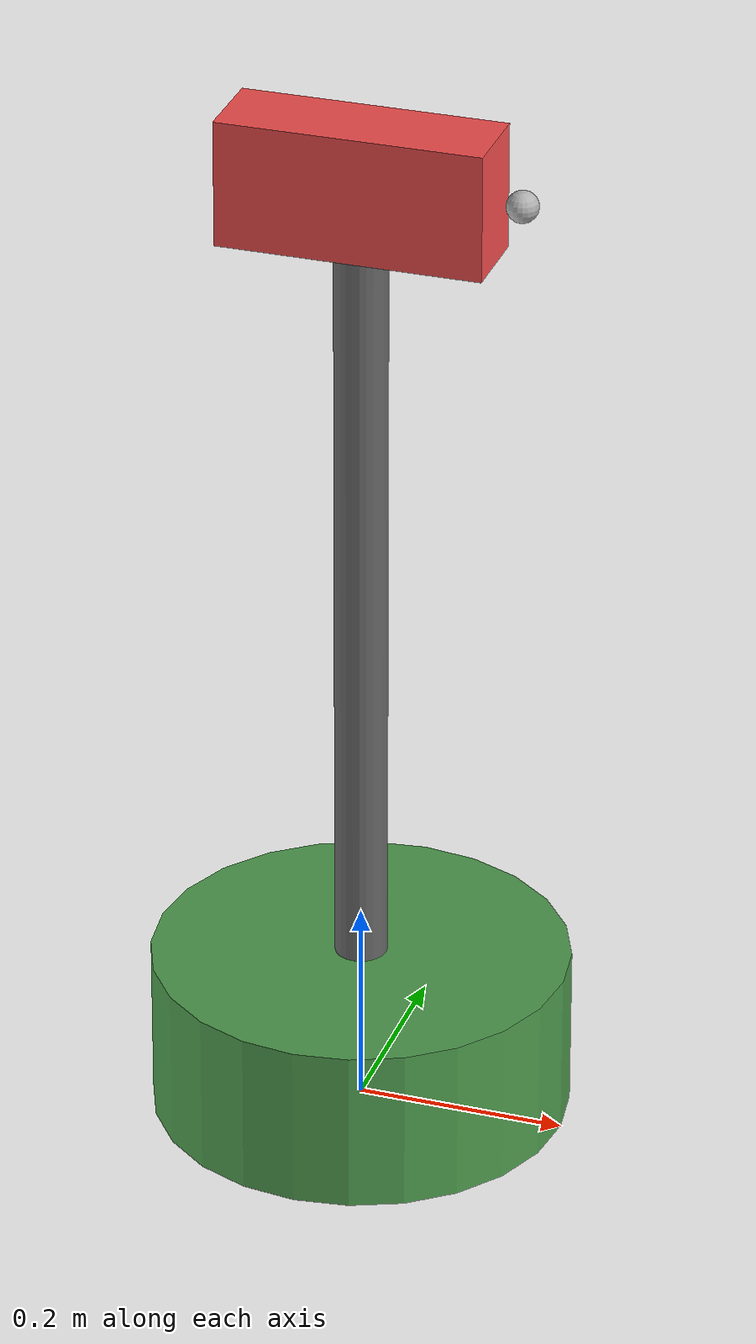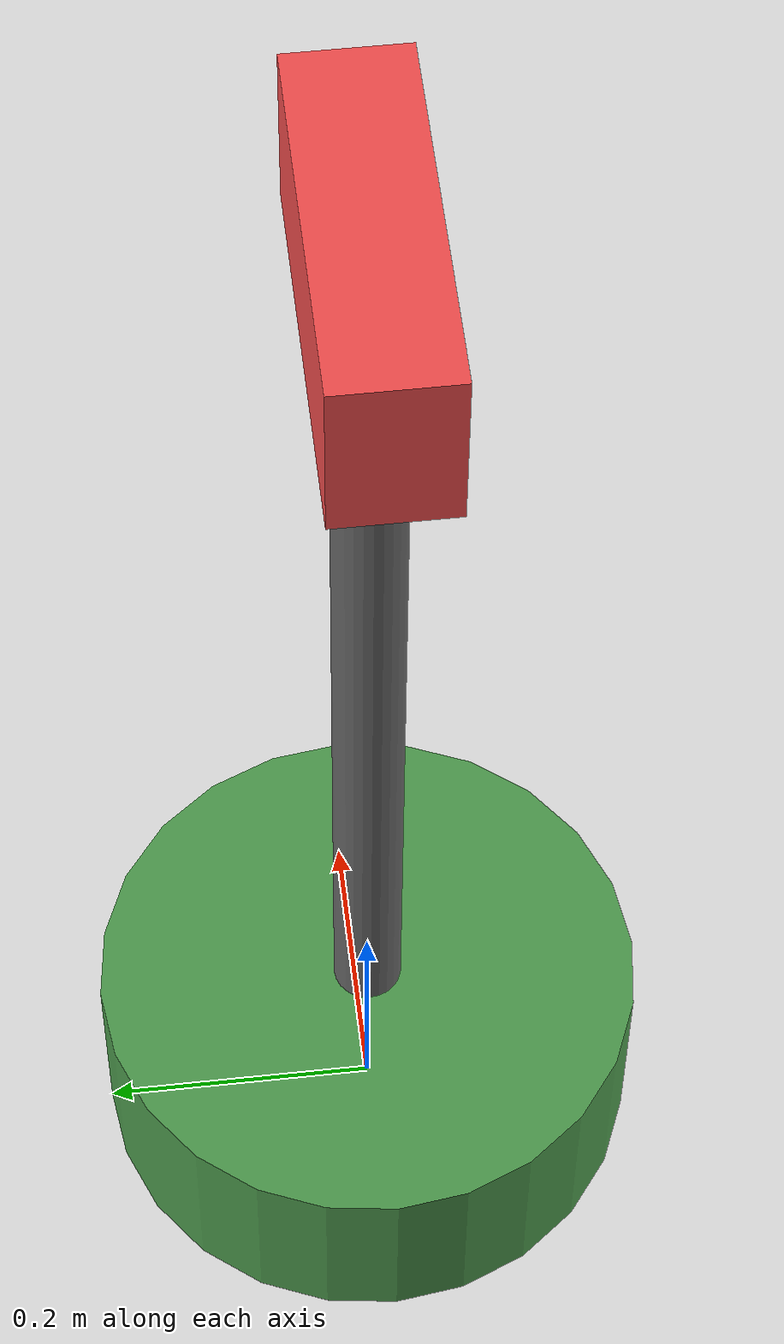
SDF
<?xml version="1.0"?>
<sdf version="1.7">
  <model name="bird_motion_sprinkler">
    <!-- Motion sensor base platform that detects bird presence. -->
    <link name="sensor_base">
      <pose>0 0 0.08 0 0 0</pose>
      <inertial>
        <mass>6.5</mass>
        <inertia>
          <ixx>0.15</ixx>
          <iyy>0.15</iyy>
          <izz>0.10</izz>
          <ixy>0.0</ixy>
          <ixz>0.0</ixz>
          <iyz>0.0</iyz>
        </inertia>
      </inertial>

      <collision name="base_collision">
        <geometry>
          <cylinder>
            <radius>0.20</radius>
            <length>0.16</length>
          </cylinder>
        </geometry>
      </collision>

      <visual name="base_visual">
        <geometry>
          <cylinder>
            <radius>0.20</radius>
            <length>0.16</length>
          </cylinder>
        </geometry>
        <material>
          <ambient>0.2 0.5 0.2 1.0</ambient>
          <diffuse>0.3 0.6 0.3 1.0</diffuse>
          <specular>0.1 0.1 0.1 1.0</specular>
        </material>
      </visual>
    </link>

    <!-- Fixed vertical support stem extending from the sensor base. -->
    <link name="support_stem">
      <pose>0 0 0.50 0 0 0</pose>
      <inertial>
        <mass>2.0</mass>
        <inertia>
          <ixx>0.015</ixx>
          <iyy>0.015</iyy>
          <izz>0.005</izz>
          <ixy>0.0</ixy>
          <ixz>0.0</ixz>
          <iyz>0.0</iyz>
        </inertia>
      </inertial>

      <collision name="stem_collision">
        <geometry>
          <cylinder>
            <radius>0.025</radius>
            <length>0.84</length>
          </cylinder>
        </geometry>
      </collision>

      <visual name="stem_visual">
        <geometry>
          <cylinder>
            <radius>0.025</radius>
            <length>0.84</length>
          </cylinder>
        </geometry>
        <material>
          <ambient>0.3 0.3 0.3 1.0</ambient>
          <diffuse>0.4 0.4 0.4 1.0</diffuse>
          <specular>0.2 0.2 0.2 1.0</specular>
        </material>
      </visual>
    </link>

    <!-- Rotating nozzle head that sprays water in a rotating pattern. -->
    <link name="nozzle_head">
      <pose>0 0 0.95 0 0 0</pose>
      <inertial>
        <mass>0.8</mass>
        <inertia>
          <ixx>0.002</ixx>
          <iyy>0.005</iyy>
          <izz>0.005</izz>
          <ixy>0.0</ixy>
          <ixz>0.0</ixz>
          <iyz>0.0</iyz>
        </inertia>
      </inertial>

      <collision name="nozzle_collision">
        <geometry>
          <box>
            <size>0.25 0.08 0.12</size>
          </box>
        </geometry>
      </collision>

      <visual name="nozzle_visual">
        <geometry>
          <box>
            <size>0.25 0.08 0.12</size>
          </box>
        </geometry>
        <material>
          <ambient>0.8 0.2 0.2 1.0</ambient>
          <diffuse>0.95 0.3 0.3 1.0</diffuse>
          <specular>0.3 0.3 0.3 1.0</specular>
        </material>
      </visual>
    </link>

    <!-- Spray outlet on the nozzle for water emission simulation. -->
    <link name="spray_outlet">
      <pose>0.15 0 0.95 0 0 0</pose>
      <inertial>
        <mass>0.1</mass>
        <inertia>
          <ixx>0.0001</ixx>
          <iyy>0.0001</iyy>
          <izz>0.0001</izz>
          <ixy>0.0</ixy>
          <ixz>0.0</ixz>
          <iyz>0.0</iyz>
        </inertia>
      </inertial>

      <collision name="outlet_collision">
        <geometry>
          <sphere>
            <radius>0.015</radius>
          </sphere>
        </geometry>
      </collision>

      <visual name="outlet_visual">
        <geometry>
          <sphere>
            <radius>0.015</radius>
          </sphere>
        </geometry>
        <material>
          <ambient>0.5 0.5 0.5 1.0</ambient>
          <diffuse>0.7 0.7 0.7 1.0</diffuse>
          <specular>0.4 0.4 0.4 1.0</specular>
        </material>
      </visual>
    </link>

    <!-- Fixed joint connecting the sensor base to the support stem. -->
    <joint name="base_to_stem_joint" type="fixed">
      <parent>sensor_base</parent>
      <child>support_stem</child>
      <pose>0 0 -0.34 0 0 0</pose>
    </joint>

    <!-- Continuous revolute joint allowing the nozzle head to rotate around the vertical axis. -->
    <joint name="stem_to_nozzle_joint" type="revolute">
      <parent>support_stem</parent>
      <child>nozzle_head</child>
      <pose>0 0 -0.13 0 0 0</pose>
      <axis>
        <xyz>0 0 1</xyz>
        <limit>
          <lower>-3.14159265</lower>
          <upper>3.14159265</upper>
          <effort>5.0</effort>
          <velocity>1.5</velocity>
        </limit>
      </axis>
      <dynamics>
        <friction>0.8</friction>
        <damping>0.2</damping>
        <spring_reference>0</spring_reference>
        <spring_stiffness>0</spring_stiffness>
      </dynamics>
    </joint>

    <!-- Fixed joint attaching the spray outlet to the nozzle head. -->
    <joint name="nozzle_to_outlet_joint" type="fixed">
      <parent>nozzle_head</parent>
      <child>spray_outlet</child>
      <pose>0 0 0 0 0 0</pose>
    </joint>
  </model>
</sdf>
